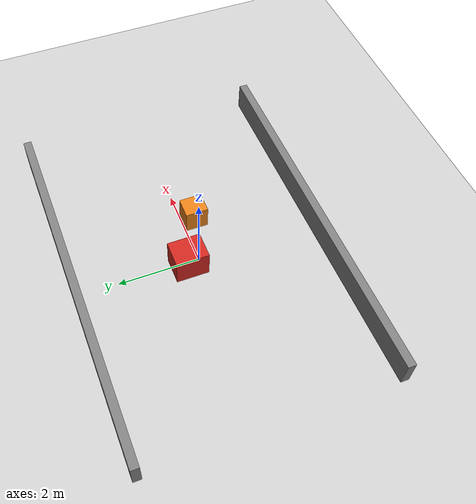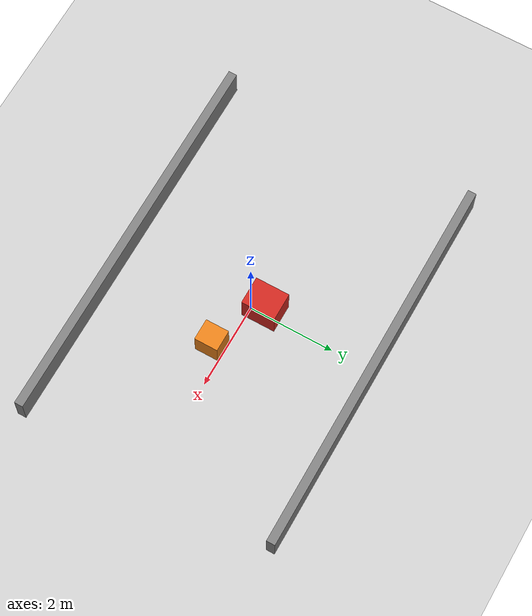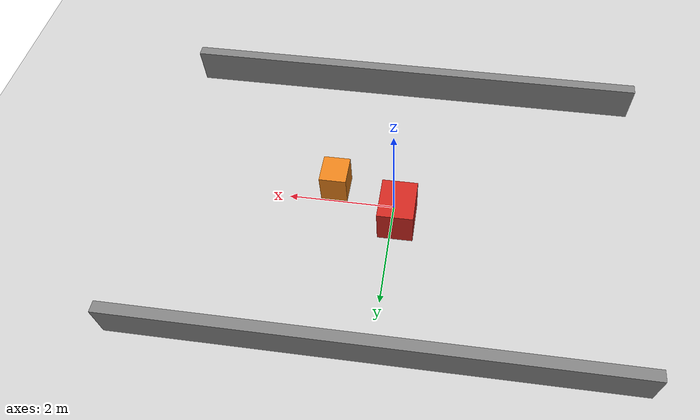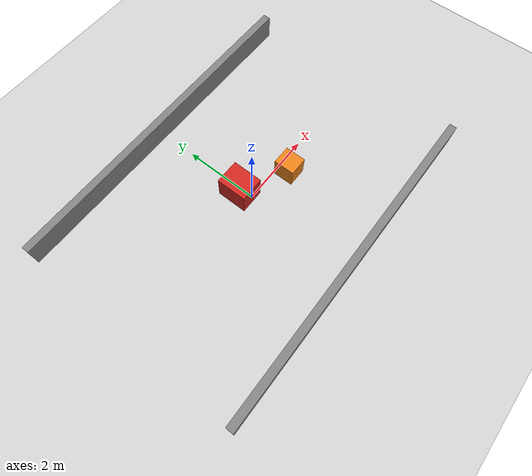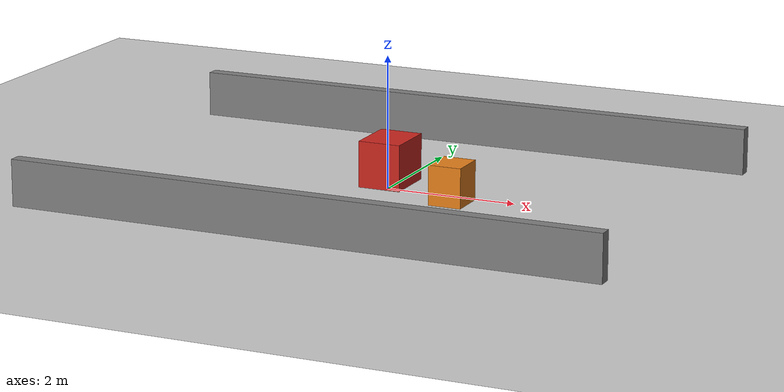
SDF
<?xml version="1.0" ?>
<sdf version="1.6">
  <world name="malecns_arena">
    <gravity>0 0 -9.81</gravity>
    <physics name="default_physics" type="ode"><real_time_update_rate>1000</real_time_update_rate><max_step_size>0.001</max_step_size></physics>
    <include><uri>model://sun</uri></include>
    <include><uri>model://ground_plane</uri></include>
    <model name="obstacle_main"><static>true</static><pose>-0.1 0.30 0.35 0 0 0</pose><link name="body"><collision name="collision"><geometry><box><size>0.65 0.80 0.70</size></box></geometry></collision><visual name="visual"><geometry><box><size>0.65 0.80 0.70</size></box></geometry><material><ambient>0.8 0.15 0.12 1</ambient><diffuse>0.8 0.15 0.12 1</diffuse></material></visual></link></model>
    <model name="obstacle_second"><static>true</static><pose>1.15 -0.30 0.30 0 0 0</pose><link name="body"><collision name="collision"><geometry><box><size>0.50 0.55 0.60</size></box></geometry></collision><visual name="visual"><geometry><box><size>0.50 0.55 0.60</size></box></geometry><material><ambient>0.9 0.5 0.1 1</ambient><diffuse>0.9 0.5 0.1 1</diffuse></material></visual></link></model>
    <model name="north_wall"><static>true</static><pose>0 3.0 0.35 0 0 0</pose><link name="body"><collision name="collision"><geometry><box><size>9 0.2 0.7</size></box></geometry></collision><visual name="visual"><geometry><box><size>9 0.2 0.7</size></box></geometry><material><ambient>0.5 0.5 0.5 1</ambient></material></visual></link></model>
    <model name="south_wall"><static>true</static><pose>0 -3.0 0.35 0 0 0</pose><link name="body"><collision name="collision"><geometry><box><size>9 0.2 0.7</size></box></geometry></collision><visual name="visual"><geometry><box><size>9 0.2 0.7</size></box></geometry><material><ambient>0.5 0.5 0.5 1</ambient></material></visual></link></model>
  </world>
</sdf>
